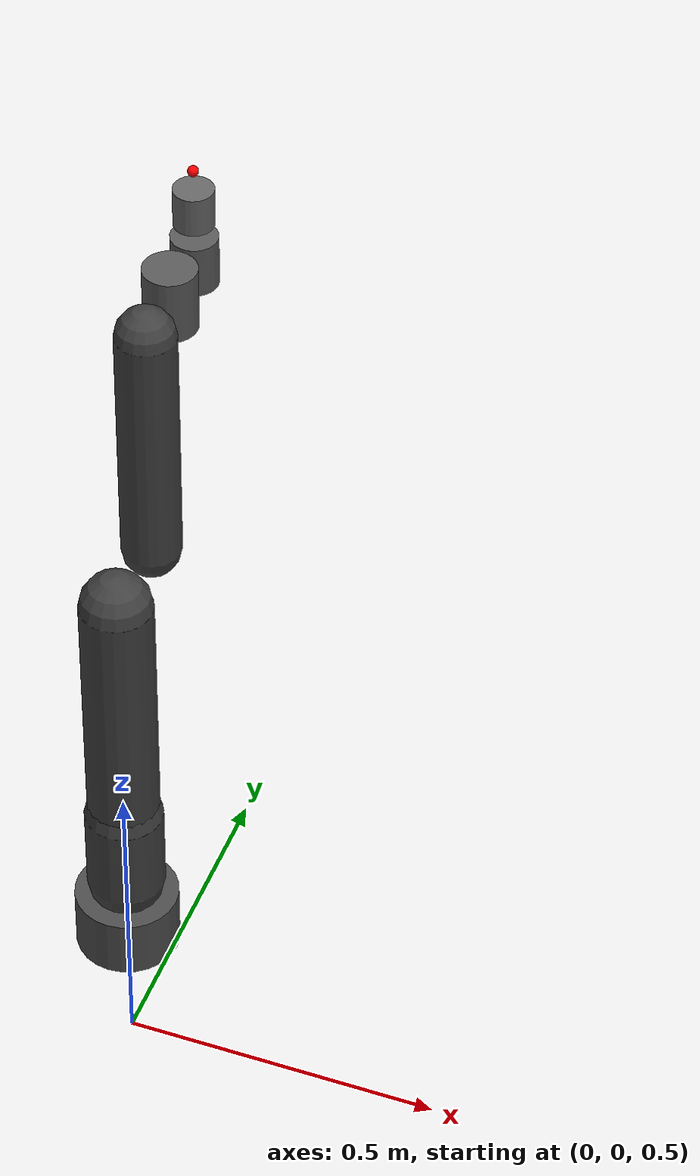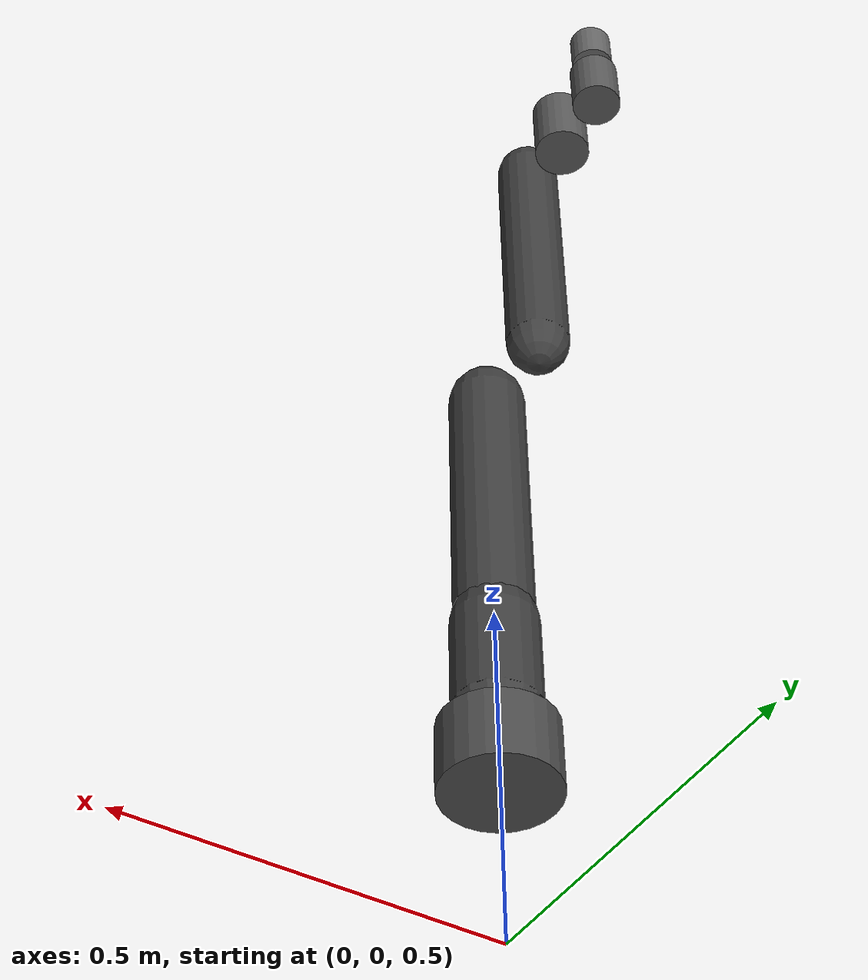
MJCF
<?xml version="1.0" encoding="UTF-8"?>
<!--
  UR5e 机械臂本体（无外部夹爪，含 6 个标准手臂关节 + 末端 site）。
  基座底部固定在 (0,0,0)，关节朝向沿 Z 向上。
  被主场景 ur5e.xml include。
-->
<mujoco model="ur5e_robot_only">
  <compiler angle="radian" coordinate="local"/>

  <worldbody>
    <body name="base" pos="0 0 0.76">
      <inertial pos="0 0 0" mass="4" diaginertia="0.03 0.03 0.04"/>
      <geom name="base_geom" type="cylinder" size="0.08 0.05" rgba="0.3 0.3 0.3 1"/>

      <body name="shoulder_link" pos="0 0 0.08">
        <joint name="shoulder_pan_joint" type="hinge" axis="0 0 1" range="-6.28 6.28"/>
        <inertial pos="0 0 0" mass="3.7" diaginertia="0.01 0.01 0.02"/>
        <geom name="shoulder_geom" type="capsule" fromto="0 0 0 0 0 0.14" size="0.06" rgba="0.25 0.25 0.25 1"/>

        <body name="upper_arm_link" pos="0 0 0.14">
          <joint name="shoulder_lift_joint" type="hinge" axis="0 1 0" range="-6.28 6.28"/>
          <inertial pos="0 0 0.18" mass="8.4" diaginertia="0.04 0.4 0.4"/>
          <geom name="upper_arm_geom" type="capsule" fromto="0 0 0 0 0 0.42" size="0.055" rgba="0.25 0.25 0.25 1"/>

          <body name="forearm_link" pos="0 0.135 0.42">
            <joint name="elbow_joint" type="hinge" axis="0 1 0" range="-3.14 3.14"/>
            <inertial pos="0 0 0.18" mass="2.7" diaginertia="0.04 0.2 0.2"/>
            <geom name="forearm_geom" type="capsule" fromto="0 0 0 0 0 0.39" size="0.045" rgba="0.25 0.25 0.25 1"/>

            <body name="wrist_1_link" pos="0 0.092 0.39">
              <joint name="wrist_1_joint" type="hinge" axis="0 1 0" range="-6.28 6.28"/>
              <inertial pos="0 0 0" mass="1.8" diaginertia="0.01 0.01 0.01"/>
              <geom name="wrist1_geom" type="cylinder" size="0.04 0.05" rgba="0.35 0.35 0.35 1"/>

              <body name="wrist_2_link" pos="0 0.092 0">
                <joint name="wrist_2_joint" type="hinge" axis="0 0 1" range="-6.28 6.28"/>
                <inertial pos="0 0 0" mass="1.2" diaginertia="0.008 0.008 0.008"/>
                <geom name="wrist2_geom" type="cylinder" size="0.035 0.04" rgba="0.35 0.35 0.35 1"/>

                <body name="wrist_3_link" pos="0 0 0.092">
                  <joint name="wrist_3_joint" type="hinge" axis="0 1 0" range="-6.28 6.28"/>
                  <inertial pos="0 0 0" mass="0.5" diaginertia="0.005 0.005 0.005"/>
                  <geom name="wrist3_geom" type="cylinder" size="0.03 0.03" rgba="0.4 0.4 0.4 1"/>
                  <site name="attachment_site" pos="0 0 0.06" size="0.008" rgba="1 0 0 1"/>
                </body>
              </body>
            </body>
          </body>
        </body>
      </body>
    </body>
  </worldbody>
</mujoco>
